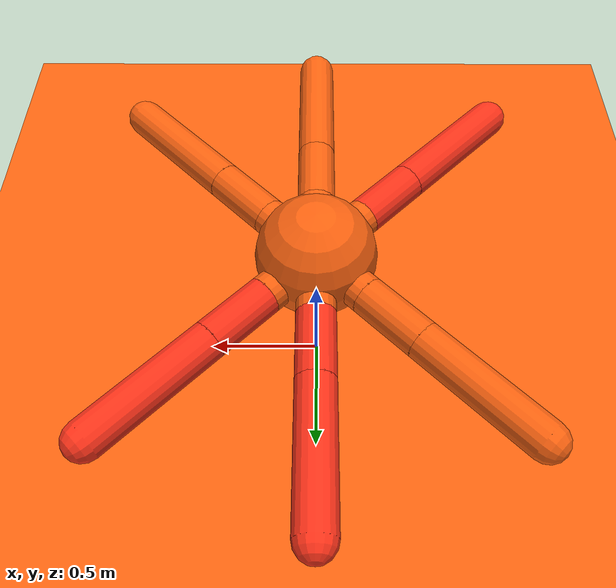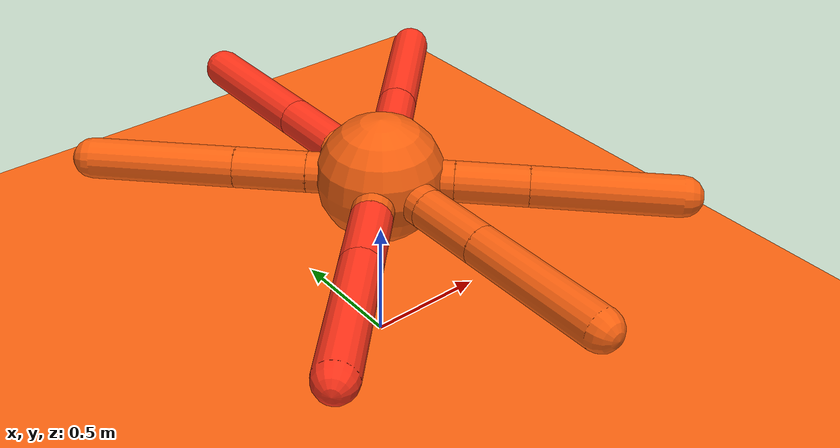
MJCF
<mujoco model="hexapod">
  <custom>
    <numeric data="0.0 0.0 0.55 1.0 0.0 0.0 0.0 0.0 1.0 0.0 -1.0 0.0 -1.0 0.0 1.0" name="init_qpos"/>
  </custom>

  <default>
    <joint armature="0.01" damping="0.1" limited="true"/>
    <geom condim="3" density="5.0" friction="1.5 0.1 0.1" margin="0.01" rgba="0.97 0.38 0.06 1"/>
  </default>

  <compiler inertiafromgeom="true" angle="degree"/>

  <option timestep="0.016" iterations="50" tolerance="1e-10" solver="Newton" jacobian="dense" cone="pyramidal"/>

  <size nconmax="50" njmax="200" nstack="10000"/>
  <visual>
      <map force="0.1" zfar="30"/>
      <rgba haze="0.15 0.25 0.35 1"/>
      <quality shadowsize="2048"/>
      <global offwidth="800" offheight="800"/>
  </visual>

  <asset>
      <texture type="skybox" builtin="gradient" rgb1="0.3 0.5 0.7" rgb2="0 0 0" width="512" height="512"/>
      <texture name="texplane" type="2d" builtin="checker" rgb1=".2 .3 .4" rgb2=".1 0.15 0.2" width="512" height="512" mark="cross" markrgb=".8 .8 .8"/>
      <texture name="texgeom" type="cube" builtin="flat" mark="cross" width="127" height="1278"
          rgb1="0.8 0.6 0.4" rgb2="0.8 0.6 0.4" markrgb="1 1 1" random="0.01"/>

      <material name="matplane" reflectance="0.3" texture="texplane" texrepeat="1 1" texuniform="true"/>
      <material name="matgeom" texture="texgeom" texuniform="true" rgba="0.8 0.6 .4 1"/>
  </asset>

  <worldbody>
    <geom name="floor" pos="0 0 0" size="0 0 .25" type="plane" material="matplane" condim="3"/>

    <light directional="false" diffuse=".2 .2 .2" specular="0 0 0" pos="0 0 5" dir="0 0 -1" castshadow="false"/>
    <light mode="targetbodycom" target="torso" directional="false" diffuse=".8 .8 .8" specular="0.3 0.3 0.3" pos="0 0 4.0" dir="0 0 -1"/>

    <body name="torso" pos="0 0 0.75">
      <freejoint name="root"/>
      <geom name="torso_geom" pos="0 0 0" size="0.25" type="sphere"/>
      <geom fromto="0.0 0.0 0.0 0.2 0.2 0.0" name="aux_1_geom" size="0.08" type="capsule"/>
      <geom fromto="0.0 0.0 0.0 0.2 -0.2 0.0" name="aux_2_geom" size="0.08" type="capsule"/>
      <geom fromto="0.0 0.0 0.0 0 0.28284271247 0.0" name="aux_3_geom" size="0.08" type="capsule"/>
      <geom fromto="0.0 0.0 0.0 0 -0.28284271247 0.0" name="aux_4_geom" size="0.08" type="capsule"/>
      <geom fromto="0.0 0.0 0.0 -0.2 0.2 0.0" name="aux_5_geom" size="0.08" type="capsule"/>
      <geom fromto="0.0 0.0 0.0 -0.2 -0.2 0.0" name="aux_6_geom" size="0.08" type="capsule"/>

      <body name="front_left_leg" pos="0.2 0.2 0">
        <joint axis="0 0 1" name="front_left_hip" pos="0.0 0.0 0.0" range="-30 30" type="hinge"/>
        <geom fromto="0.0 0.0 0.0 0.2 0.2 0.0" name="front_left_leg_geom" size="0.08" type="capsule" rgba=".999 .2 .1 1"/>
        <body pos="0.2 0.2 0" name="front_left_foot">
          <joint axis="-1 1 0" name="front_left_ankle" pos="0.0 0.0 0.0" range="30 70" type="hinge"/>
          <geom fromto="0.0 0.0 0.0 0.4 0.4 0.0" name="front_left_ankle_geom" size="0.08" type="capsule" rgba=".999 .2 .1 1"/>
        </body>
      </body>
      <body name="front_right_leg" pos="0.2 -0.2 0">
        <joint axis="0 0 1" name="front_right_hip" pos="0.0 0.0 0.0" range="-30 30" type="hinge"/>
        <geom fromto="0.0 0.0 0.0 0.2 -0.2 0.0" name="front_right_leg_geom" size="0.08" type="capsule"/>
        <body pos="0.2 -0.2 0" name="front_right_foot">
          <joint axis="1 1 0" name="front_right_ankle" pos="0.0 0.0 0.0" range="30 70" type="hinge"/>
          <geom fromto="0.0 0.0 0.0 0.4 -0.4 0.0" name="front_right_ankle_geom" size="0.08" type="capsule"/>
        </body>
      </body>
      <body name="middle_left_leg" pos="0 0.28284271247 0">
        <joint axis="0 0 1" name="middle_left_hip" pos="0.0 0.0 0.0" range="-30 30" type="hinge"/>
        <geom fromto="0.0 0.0 0.0 0 0.28284271247 0.0" name="middle_left_leg_geom" size="0.08" type="capsule" rgba=".999 .2 .1 1"/>
        <body pos="0 0.28284271247 0" name="front_left_foot">
          <joint axis="-1 1 0" name="front_left_ankle" pos="0.0 0.0 0.0" range="30 70" type="hinge"/>
          <geom fromto="0.0 0.0 0.0 0 0.56568542494 0.0" name="middle_left_ankle_geom" size="0.08" type="capsule" rgba=".999 .2 .1 1"/>
        </body>
      </body>
      <body name="middle_right_leg" pos="0 -0.28284271247 0">
        <joint axis="0 0 1" name="middle_right_hip" pos="0.0 0.0 0.0" range="-30 30" type="hinge"/>
        <geom fromto="0.0 0.0 0.0 0 -0.28284271247 0.0" name="middle_right_leg_geom" size="0.08" type="capsule"/>
        <body pos="0 -0.28284271247 0" name="middle_right_foot">
          <joint axis="1 1 0" name="middle_right_ankle" pos="0.0 0.0 0.0" range="30 70" type="hinge"/>
          <geom fromto="0.0 0.0 0.0 0 -0.56568542494 0.0" name="middle_right_ankle_geom" size="0.08" type="capsule"/>
        </body>
      </body>
      <body name="back_left_leg" pos="-0.2 0.2 0">
        <joint axis="0 0 1" name="back_left_hip" pos="0.0 0.0 0.0" range="-30 30" type="hinge"/>
        <geom fromto="0.0 0.0 0.0 -0.2 0.2 0.0" name="back_left_leg_geom" size="0.08" type="capsule"/>
        <body pos="-0.2 0.2 0" name="back_left_foot">
          <joint axis="-1 -1 0" name="back_left_ankle" pos="0.0 0.0 0.0" range="30 70" type="hinge"/>
          <geom fromto="0.0 0.0 0.0 -0.4 0.4 0.0" name="back_left_ankle_geom" size="0.08" type="capsule"/>
        </body>
      </body>
      <body name="back_right_leg" pos="-0.2 -0.2 0">
        <joint axis="0 0 1" name="back_right_hip" pos="0.0 0.0 0.0" range="-30 30" type="hinge"/>
        <geom fromto="0.0 0.0 0.0 -0.2 -0.2 0.0" name="back_right_leg_geom" size="0.08" type="capsule" rgba=".999 .2 .1 1"/>
        <body pos="-0.2 -0.2 0" name="back_right_foot">
          <joint axis="1 -1 0" name="back_right_ankle" pos="0.0 0.0 0.0" range="30 70" type="hinge"/>
          <geom fromto="0.0 0.0 0.0 -0.4 -0.4 0.0" name="back_right_ankle_geom" size="0.08" type="capsule" rgba=".999 .2 .1 1"/>
        </body>
      </body>
    </body>
  </worldbody>

  <actuator>
    <motor ctrllimited="true" ctrlrange="-1.0 1.0" joint="front_left_hip" gear="15"/>
    <motor ctrllimited="true" ctrlrange="-1.0 1.0" joint="front_left_ankle" gear="15"/>
    <motor ctrllimited="true" ctrlrange="-1.0 1.0" joint="front_right_hip" gear="15"/>
    <motor ctrllimited="true" ctrlrange="-1.0 1.0" joint="front_right_ankle" gear="15"/>
    <motor ctrllimited="true" ctrlrange="-1.0 1.0" joint="middle_left_hip" gear="15"/>
    <motor ctrllimited="true" ctrlrange="-1.0 1.0" joint="middle_left_ankle" gear="15"/>
    <motor ctrllimited="true" ctrlrange="-1.0 1.0" joint="middle_right_hip" gear="15"/>
    <motor ctrllimited="true" ctrlrange="-1.0 1.0" joint="middle_right_ankle" gear="15"/>
    <motor ctrllimited="true" ctrlrange="-1.0 1.0" joint="back_left_hip" gear="15"/>
    <motor ctrllimited="true" ctrlrange="-1.0 1.0" joint="back_left_ankle" gear="15"/>
    <motor ctrllimited="true" ctrlrange="-1.0 1.0" joint="back_right_hip" gear="15"/>
    <motor ctrllimited="true" ctrlrange="-1.0 1.0" joint="back_right_ankle" gear="15"/>
  </actuator>
</mujoco>
